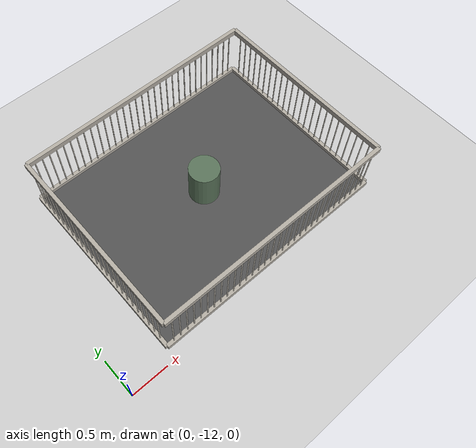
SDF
<sdf version="1.9">
 <world name="pig_pen_16units_world">
  <model name="ground_plane">
   <static>true</static>
   <link name="link">
    <collision name="collision">
     <geometry><plane><normal>0 0 1</normal><size>30 30</size></plane></geometry>
     <surface><friction><ode><mu>1.0</mu><mu2>1.0</mu2></ode></friction></surface>
    </collision>
    <visual name="visual">
     <geometry><plane><normal>0 0 1</normal><size>30 30</size></plane></geometry>
     <material>
      <ambient>0.8 0.8 0.8 1</ambient>
      <diffuse>0.8 0.8 0.8 1</diffuse>
      <specular>0.2 0.2 0.2 1</specular>
     </material>
    </visual>
   </link>
  </model>
  <model name="pen10">
   <pose>2.275 -10.565 0 0 0 0</pose>
   <static>true</static>
   <link name="floor">
    <pose>0 0 0.01 0 0 0</pose>
    <collision name="collision"><geometry><box><size>3.30 2.55 0.02</size></box></geometry></collision>
    <visual name="visual">
     <geometry><box><size>3.30 2.55 0.02</size></box></geometry>
     <material>
      <ambient>0.25 0.25 0.25 1</ambient>
      <diffuse>0.32 0.32 0.32 1</diffuse>
      <specular>0.05 0.05 0.05 1</specular>
     </material>
    </visual>
   </link>
   <link name="left_wall">
    <pose>0 1.275 0.415 0 0 0</pose>
    <collision name="top_rail_col">
     <pose>0 0 0.38 0 0 0</pose>
     <geometry><box><size>3.30 0.05 0.07</size></box></geometry>
    </collision>
    <visual name="top_rail_vis">
     <pose>0 0 0.38 0 0 0</pose>
     <geometry><box><size>3.30 0.05 0.07</size></box></geometry>
     <material><ambient>0.70 0.68 0.64 1</ambient><diffuse>0.70 0.68 0.64 1</diffuse></material>
    </visual>
    <collision name="bottom_rail_col">
     <pose>0 0 -0.38 0 0 0</pose>
     <geometry><box><size>3.30 0.05 0.07</size></box></geometry>
    </collision>
    <visual name="bottom_rail_vis">
     <pose>0 0 -0.38 0 0 0</pose>
     <geometry><box><size>3.30 0.05 0.07</size></box></geometry>
     <material><ambient>0.70 0.68 0.64 1</ambient><diffuse>0.70 0.68 0.64 1</diffuse></material>
    </visual>
    <collision name="bar_01_col">
     <pose>-1.55 0 0 0 0 0</pose>
     <geometry><cylinder><radius>0.0075</radius><length>0.69</length></cylinder></geometry>
    </collision>
    <visual name="bar_01_vis">
     <pose>-1.55 0 0 0 0 0</pose>
     <geometry><cylinder><radius>0.0075</radius><length>0.69</length></cylinder></geometry>
     <material><ambient>0.70 0.68 0.64 1</ambient><diffuse>0.70 0.68 0.64 1</diffuse></material>
    </visual>
    <collision name="bar_02_col">
     <pose>-1.45 0 0 0 0 0</pose>
     <geometry><cylinder><radius>0.0075</radius><length>0.69</length></cylinder></geometry>
    </collision>
    <visual name="bar_02_vis">
     <pose>-1.45 0 0 0 0 0</pose>
     <geometry><cylinder><radius>0.0075</radius><length>0.69</length></cylinder></geometry>
     <material><ambient>0.70 0.68 0.64 1</ambient><diffuse>0.70 0.68 0.64 1</diffuse></material>
    </visual>
    <collision name="bar_03_col">
     <pose>-1.35 0 0 0 0 0</pose>
     <geometry><cylinder><radius>0.0075</radius><length>0.69</length></cylinder></geometry>
    </collision>
    <visual name="bar_03_vis">
     <pose>-1.35 0 0 0 0 0</pose>
     <geometry><cylinder><radius>0.0075</radius><length>0.69</length></cylinder></geometry>
     <material><ambient>0.70 0.68 0.64 1</ambient><diffuse>0.70 0.68 0.64 1</diffuse></material>
    </visual>
    <collision name="bar_04_col">
     <pose>-1.25 0 0 0 0 0</pose>
     <geometry><cylinder><radius>0.0075</radius><length>0.69</length></cylinder></geometry>
    </collision>
    <visual name="bar_04_vis">
     <pose>-1.25 0 0 0 0 0</pose>
     <geometry><cylinder><radius>0.0075</radius><length>0.69</length></cylinder></geometry>
     <material><ambient>0.70 0.68 0.64 1</ambient><diffuse>0.70 0.68 0.64 1</diffuse></material>
    </visual>
    <collision name="bar_05_col">
     <pose>-1.15 0 0 0 0 0</pose>
     <geometry><cylinder><radius>0.0075</radius><length>0.69</length></cylinder></geometry>
    </collision>
    <visual name="bar_05_vis">
     <pose>-1.15 0 0 0 0 0</pose>
     <geometry><cylinder><radius>0.0075</radius><length>0.69</length></cylinder></geometry>
     <material><ambient>0.70 0.68 0.64 1</ambient><diffuse>0.70 0.68 0.64 1</diffuse></material>
    </visual>
    <collision name="bar_06_col">
     <pose>-1.05 0 0 0 0 0</pose>
     <geometry><cylinder><radius>0.0075</radius><length>0.69</length></cylinder></geometry>
    </collision>
    <visual name="bar_06_vis">
     <pose>-1.05 0 0 0 0 0</pose>
     <geometry><cylinder><radius>0.0075</radius><length>0.69</length></cylinder></geometry>
     <material><ambient>0.70 0.68 0.64 1</ambient><diffuse>0.70 0.68 0.64 1</diffuse></material>
    </visual>
    <collision name="bar_07_col">
     <pose>-0.95 0 0 0 0 0</pose>
     <geometry><cylinder><radius>0.0075</radius><length>0.69</length></cylinder></geometry>
    </collision>
    <visual name="bar_07_vis">
     <pose>-0.95 0 0 0 0 0</pose>
     <geometry><cylinder><radius>0.0075</radius><length>0.69</length></cylinder></geometry>
     <material><ambient>0.70 0.68 0.64 1</ambient><diffuse>0.70 0.68 0.64 1</diffuse></material>
    </visual>
    <collision name="bar_08_col">
     <pose>-0.85 0 0 0 0 0</pose>
     <geometry><cylinder><radius>0.0075</radius><length>0.69</length></cylinder></geometry>
    </collision>
    <visual name="bar_08_vis">
     <pose>-0.85 0 0 0 0 0</pose>
     <geometry><cylinder><radius>0.0075</radius><length>0.69</length></cylinder></geometry>
     <material><ambient>0.70 0.68 0.64 1</ambient><diffuse>0.70 0.68 0.64 1</diffuse></material>
    </visual>
    <collision name="bar_09_col">
     <pose>-0.75 0 0 0 0 0</pose>
     <geometry><cylinder><radius>0.0075</radius><length>0.69</length></cylinder></geometry>
    </collision>
    <visual name="bar_09_vis">
     <pose>-0.75 0 0 0 0 0</pose>
     <geometry><cylinder><radius>0.0075</radius><length>0.69</length></cylinder></geometry>
     <material><ambient>0.70 0.68 0.64 1</ambient><diffuse>0.70 0.68 0.64 1</diffuse></material>
    </visual>
    <collision name="bar_10_col">
     <pose>-0.65 0 0 0 0 0</pose>
     <geometry><cylinder><radius>0.0075</radius><length>0.69</length></cylinder></geometry>
    </collision>
    <visual name="bar_10_vis">
     <pose>-0.65 0 0 0 0 0</pose>
     <geometry><cylinder><radius>0.0075</radius><length>0.69</length></cylinder></geometry>
     <material><ambient>0.70 0.68 0.64 1</ambient><diffuse>0.70 0.68 0.64 1</diffuse></material>
    </visual>
    <collision name="bar_11_col">
     <pose>-0.55 0 0 0 0 0</pose>
     <geometry><cylinder><radius>0.0075</radius><length>0.69</length></cylinder></geometry>
    </collision>
    <visual name="bar_11_vis">
     <pose>-0.55 0 0 0 0 0</pose>
     <geometry><cylinder><radius>0.0075</radius><length>0.69</length></cylinder></geometry>
     <material><ambient>0.70 0.68 0.64 1</ambient><diffuse>0.70 0.68 0.64 1</diffuse></material>
    </visual>
    <collision name="bar_12_col">
     <pose>-0.45 0 0 0 0 0</pose>
     <geometry><cylinder><radius>0.0075</radius><length>0.69</length></cylinder></geometry>
    </collision>
    <visual name="bar_12_vis">
     <pose>-0.45 0 0 0 0 0</pose>
     <geometry><cylinder><radius>0.0075</radius><length>0.69</length></cylinder></geometry>
     <material><ambient>0.70 0.68 0.64 1</ambient><diffuse>0.70 0.68 0.64 1</diffuse></material>
    </visual>
    <collision name="bar_13_col">
     <pose>-0.35 0 0 0 0 0</pose>
     <geometry><cylinder><radius>0.0075</radius><length>0.69</length></cylinder></geometry>
    </collision>
    <visual name="bar_13_vis">
     <pose>-0.35 0 0 0 0 0</pose>
     <geometry><cylinder><radius>0.0075</radius><length>0.69</length></cylinder></geometry>
     <material><ambient>0.70 0.68 0.64 1</ambient><diffuse>0.70 0.68 0.64 1</diffuse></material>
    </visual>
    <collision name="bar_14_col">
     <pose>-0.25 0 0 0 0 0</pose>
     <geometry><cylinder><radius>0.0075</radius><length>0.69</length></cylinder></geometry>
    </collision>
    <visual name="bar_14_vis">
     <pose>-0.25 0 0 0 0 0</pose>
     <geometry><cylinder><radius>0.0075</radius><length>0.69</length></cylinder></geometry>
     <material><ambient>0.70 0.68 0.64 1</ambient><diffuse>0.70 0.68 0.64 1</diffuse></material>
    </visual>
    <collision name="bar_15_col">
     <pose>-0.15 0 0 0 0 0</pose>
     <geometry><cylinder><radius>0.0075</radius><length>0.69</length></cylinder></geometry>
    </collision>
    <visual name="bar_15_vis">
     <pose>-0.15 0 0 0 0 0</pose>
     <geometry><cylinder><radius>0.0075</radius><length>0.69</length></cylinder></geometry>
     <material><ambient>0.70 0.68 0.64 1</ambient><diffuse>0.70 0.68 0.64 1</diffuse></material>
    </visual>
    <collision name="bar_16_col">
     <pose>-0.05 0 0 0 0 0</pose>
     <geometry><cylinder><radius>0.0075</radius><length>0.69</length></cylinder></geometry>
    </collision>
    <visual name="bar_16_vis">
     <pose>-0.05 0 0 0 0 0</pose>
     <geometry><cylinder><radius>0.0075</radius><length>0.69</length></cylinder></geometry>
     <material><ambient>0.70 0.68 0.64 1</ambient><diffuse>0.70 0.68 0.64 1</diffuse></material>
    </visual>
    <collision name="bar_17_col">
     <pose>0.05 0 0 0 0 0</pose>
     <geometry><cylinder><radius>0.0075</radius><length>0.69</length></cylinder></geometry>
    </collision>
    <visual name="bar_17_vis">
     <pose>0.05 0 0 0 0 0</pose>
     <geometry><cylinder><radius>0.0075</radius><length>0.69</length></cylinder></geometry>
     <material><ambient>0.70 0.68 0.64 1</ambient><diffuse>0.70 0.68 0.64 1</diffuse></material>
    </visual>
    <collision name="bar_18_col">
     <pose>0.15 0 0 0 0 0</pose>
     <geometry><cylinder><radius>0.0075</radius><length>0.69</length></cylinder></geometry>
    </collision>
    <visual name="bar_18_vis">
     <pose>0.15 0 0 0 0 0</pose>
     <geometry><cylinder><radius>0.0075</radius><length>0.69</length></cylinder></geometry>
     <material><ambient>0.70 0.68 0.64 1</ambient><diffuse>0.70 0.68 0.64 1</diffuse></material>
    </visual>
    <collision name="bar_19_col">
     <pose>0.25 0 0 0 0 0</pose>
     <geometry><cylinder><radius>0.0075</radius><length>0.69</length></cylinder></geometry>
    </collision>
    <visual name="bar_19_vis">
     <pose>0.25 0 0 0 0 0</pose>
     <geometry><cylinder><radius>0.0075</radius><length>0.69</length></cylinder></geometry>
     <material><ambient>0.70 0.68 0.64 1</ambient><diffuse>0.70 0.68 0.64 1</diffuse></material>
    </visual>
    <collision name="bar_20_col">
     <pose>0.35 0 0 0 0 0</pose>
     <geometry><cylinder><radius>0.0075</radius><length>0.69</length></cylinder></geometry>
    </collision>
    <visual name="bar_20_vis">
     <pose>0.35 0 0 0 0 0</pose>
     <geometry><cylinder><radius>0.0075</radius><length>0.69</length></cylinder></geometry>
     <material><ambient>0.70 0.68 0.64 1</ambient><diffuse>0.70 0.68 0.64 1</diffuse></material>
    </visual>
    <collision name="bar_21_col">
     <pose>0.45 0 0 0 0 0</pose>
     <geometry><cylinder><radius>0.0075</radius><length>0.69</length></cylinder></geometry>
    </collision>
    <visual name="bar_21_vis">
     <pose>0.45 0 0 0 0 0</pose>
     <geometry><cylinder><radius>0.0075</radius><length>0.69</length></cylinder></geometry>
     <material><ambient>0.70 0.68 0.64 1</ambient><diffuse>0.70 0.68 0.64 1</diffuse></material>
    </visual>
    <collision name="bar_22_col">
     <pose>0.55 0 0 0 0 0</pose>
     <geometry><cylinder><radius>0.0075</radius><length>0.69</length></cylinder></geometry>
    </collision>
    <visual name="bar_22_vis">
     <pose>0.55 0 0 0 0 0</pose>
     <geometry><cylinder><radius>0.0075</radius><length>0.69</length></cylinder></geometry>
     <material><ambient>0.70 0.68 0.64 1</ambient><diffuse>0.70 0.68 0.64 1</diffuse></material>
    </visual>
    <collision name="bar_23_col">
     <pose>0.65 0 0 0 0 0</pose>
     <geometry><cylinder><radius>0.0075</radius><length>0.69</length></cylinder></geometry>
    </collision>
    <visual name="bar_23_vis">
     <pose>0.65 0 0 0 0 0</pose>
     <geometry><cylinder><radius>0.0075</radius><length>0.69</length></cylinder></geometry>
     <material><ambient>0.70 0.68 0.64 1</ambient><diffuse>0.70 0.68 0.64 1</diffuse></material>
    </visual>
    <collision name="bar_24_col">
     <pose>0.75 0 0 0 0 0</pose>
     <geometry><cylinder><radius>0.0075</radius><length>0.69</length></cylinder></geometry>
    </collision>
    <visual name="bar_24_vis">
     <pose>0.75 0 0 0 0 0</pose>
     <geometry><cylinder><radius>0.0075</radius><length>0.69</length></cylinder></geometry>
     <material><ambient>0.70 0.68 0.64 1</ambient><diffuse>0.70 0.68 0.64 1</diffuse></material>
    </visual>
    <collision name="bar_25_col">
     <pose>0.85 0 0 0 0 0</pose>
     <geometry><cylinder><radius>0.0075</radius><length>0.69</length></cylinder></geometry>
    </collision>
    <visual name="bar_25_vis">
     <pose>0.85 0 0 0 0 0</pose>
     <geometry><cylinder><radius>0.0075</radius><length>0.69</length></cylinder></geometry>
     <material><ambient>0.70 0.68 0.64 1</ambient><diffuse>0.70 0.68 0.64 1</diffuse></material>
    </visual>
    <collision name="bar_26_col">
     <pose>0.95 0 0 0 0 0</pose>
     <geometry><cylinder><radius>0.0075</radius><length>0.69</length></cylinder></geometry>
    </collision>
    <visual name="bar_26_vis">
     <pose>0.95 0 0 0 0 0</pose>
     <geometry><cylinder><radius>0.0075</radius><length>0.69</length></cylinder></geometry>
     <material><ambient>0.70 0.68 0.64 1</ambient><diffuse>0.70 0.68 0.64 1</diffuse></material>
    </visual>
    <collision name="bar_27_col">
     <pose>1.05 0 0 0 0 0</pose>
     <geometry><cylinder><radius>0.0075</radius><length>0.69</length></cylinder></geometry>
    </collision>
    <visual name="bar_27_vis">
     <pose>1.05 0 0 0 0 0</pose>
     <geometry><cylinder><radius>0.0075</radius><length>0.69</length></cylinder></geometry>
     <material><ambient>0.70 0.68 0.64 1</ambient><diffuse>0.70 0.68 0.64 1</diffuse></material>
    </visual>
    <collision name="bar_28_col">
     <pose>1.15 0 0 0 0 0</pose>
     <geometry><cylinder><radius>0.0075</radius><length>0.69</length></cylinder></geometry>
    </collision>
    <visual name="bar_28_vis">
     <pose>1.15 0 0 0 0 0</pose>
     <geometry><cylinder><radius>0.0075</radius><length>0.69</length></cylinder></geometry>
     <material><ambient>0.70 0.68 0.64 1</ambient><diffuse>0.70 0.68 0.64 1</diffuse></material>
    </visual>
    <collision name="bar_29_col">
     <pose>1.25 0 0 0 0 0</pose>
     <geometry><cylinder><radius>0.0075</radius><length>0.69</length></cylinder></geometry>
    </collision>
    <visual name="bar_29_vis">
     <pose>1.25 0 0 0 0 0</pose>
     <geometry><cylinder><radius>0.0075</radius><length>0.69</length></cylinder></geometry>
     <material><ambient>0.70 0.68 0.64 1</ambient><diffuse>0.70 0.68 0.64 1</diffuse></material>
    </visual>
    <collision name="bar_30_col">
     <pose>1.35 0 0 0 0 0</pose>
     <geometry><cylinder><radius>0.0075</radius><length>0.69</length></cylinder></geometry>
    </collision>
    <visual name="bar_30_vis">
     <pose>1.35 0 0 0 0 0</pose>
     <geometry><cylinder><radius>0.0075</radius><length>0.69</length></cylinder></geometry>
     <material><ambient>0.70 0.68 0.64 1</ambient><diffuse>0.70 0.68 0.64 1</diffuse></material>
    </visual>
    <collision name="bar_31_col">
     <pose>1.45 0 0 0 0 0</pose>
     <geometry><cylinder><radius>0.0075</radius><length>0.69</length></cylinder></geometry>
    </collision>
    <visual name="bar_31_vis">
     <pose>1.45 0 0 0 0 0</pose>
     <geometry><cylinder><radius>0.0075</radius><length>0.69</length></cylinder></geometry>
     <material><ambient>0.70 0.68 0.64 1</ambient><diffuse>0.70 0.68 0.64 1</diffuse></material>
    </visual>
    <collision name="bar_32_col">
     <pose>1.55 0 0 0 0 0</pose>
     <geometry><cylinder><radius>0.0075</radius><length>0.69</length></cylinder></geometry>
    </collision>
    <visual name="bar_32_vis">
     <pose>1.55 0 0 0 0 0</pose>
     <geometry><cylinder><radius>0.0075</radius><length>0.69</length></cylinder></geometry>
     <material><ambient>0.70 0.68 0.64 1</ambient><diffuse>0.70 0.68 0.64 1</diffuse></material>
    </visual>
   </link>
   <link name="right_wall">
    <pose>0 -1.275 0.415 0 0 0</pose>
    <collision name="top_rail_col">
     <pose>0 0 0.38 0 0 0</pose>
     <geometry><box><size>3.30 0.05 0.07</size></box></geometry>
    </collision>
    <visual name="top_rail_vis">
     <pose>0 0 0.38 0 0 0</pose>
     <geometry><box><size>3.30 0.05 0.07</size></box></geometry>
     <material><ambient>0.70 0.68 0.64 1</ambient><diffuse>0.70 0.68 0.64 1</diffuse></material>
    </visual>
    <collision name="bottom_rail_col">
     <pose>0 0 -0.38 0 0 0</pose>
     <geometry><box><size>3.30 0.05 0.07</size></box></geometry>
    </collision>
    <visual name="bottom_rail_vis">
     <pose>0 0 -0.38 0 0 0</pose>
     <geometry><box><size>3.30 0.05 0.07</size></box></geometry>
     <material><ambient>0.70 0.68 0.64 1</ambient><diffuse>0.70 0.68 0.64 1</diffuse></material>
    </visual>
    <collision name="bar_01_col">
     <pose>-1.55 0 0 0 0 0</pose>
     <geometry><cylinder><radius>0.0075</radius><length>0.69</length></cylinder></geometry>
    </collision>
    <visual name="bar_01_vis">
     <pose>-1.55 0 0 0 0 0</pose>
     <geometry><cylinder><radius>0.0075</radius><length>0.69</length></cylinder></geometry>
     <material><ambient>0.70 0.68 0.64 1</ambient><diffuse>0.70 0.68 0.64 1</diffuse></material>
    </visual>
    <collision name="bar_02_col">
     <pose>-1.45 0 0 0 0 0</pose>
     <geometry><cylinder><radius>0.0075</radius><length>0.69</length></cylinder></geometry>
    </collision>
    <visual name="bar_02_vis">
     <pose>-1.45 0 0 0 0 0</pose>
     <geometry><cylinder><radius>0.0075</radius><length>0.69</length></cylinder></geometry>
     <material><ambient>0.70 0.68 0.64 1</ambient><diffuse>0.70 0.68 0.64 1</diffuse></material>
    </visual>
    <collision name="bar_03_col">
     <pose>-1.35 0 0 0 0 0</pose>
     <geometry><cylinder><radius>0.0075</radius><length>0.69</length></cylinder></geometry>
    </collision>
    <visual name="bar_03_vis">
     <pose>-1.35 0 0 0 0 0</pose>
     <geometry><cylinder><radius>0.0075</radius><length>0.69</length></cylinder></geometry>
     <material><ambient>0.70 0.68 0.64 1</ambient><diffuse>0.70 0.68 0.64 1</diffuse></material>
    </visual>
    <collision name="bar_04_col">
     <pose>-1.25 0 0 0 0 0</pose>
     <geometry><cylinder><radius>0.0075</radius><length>0.69</length></cylinder></geometry>
    </collision>
    <visual name="bar_04_vis">
     <pose>-1.25 0 0 0 0 0</pose>
     <geometry><cylinder><radius>0.0075</radius><length>0.69</length></cylinder></geometry>
     <material><ambient>0.70 0.68 0.64 1</ambient><diffuse>0.70 0.68 0.64 1</diffuse></material>
    </visual>
    <collision name="bar_05_col">
     <pose>-1.15 0 0 0 0 0</pose>
     <geometry><cylinder><radius>0.0075</radius><length>0.69</length></cylinder></geometry>
    </collision>
    <visual name="bar_05_vis">
     <pose>-1.15 0 0 0 0 0</pose>
     <geometry><cylinder><radius>0.0075</radius><length>0.69</length></cylinder></geometry>
     <material><ambient>0.70 0.68 0.64 1</ambient><diffuse>0.70 0.68 0.64 1</diffuse></material>
    </visual>
    <collision name="bar_06_col">
     <pose>-1.05 0 0 0 0 0</pose>
     <geometry><cylinder><radius>0.0075</radius><length>0.69</length></cylinder></geometry>
    </collision>
    <visual name="bar_06_vis">
     <pose>-1.05 0 0 0 0 0</pose>
     <geometry><cylinder><radius>0.0075</radius><length>0.69</length></cylinder></geometry>
     <material><ambient>0.70 0.68 0.64 1</ambient><diffuse>0.70 0.68 0.64 1</diffuse></material>
    </visual>
    <collision name="bar_07_col">
     <pose>-0.95 0 0 0 0 0</pose>
     <geometry><cylinder><radius>0.0075</radius><length>0.69</length></cylinder></geometry>
    </collision>
    <visual name="bar_07_vis">
     <pose>-0.95 0 0 0 0 0</pose>
     <geometry><cylinder><radius>0.0075</radius><length>0.69</length></cylinder></geometry>
     <material><ambient>0.70 0.68 0.64 1</ambient><diffuse>0.70 0.68 0.64 1</diffuse></material>
    </visual>
    <collision name="bar_08_col">
     <pose>-0.85 0 0 0 0 0</pose>
     <geometry><cylinder><radius>0.0075</radius><length>0.69</length></cylinder></geometry>
    </collision>
    <visual name="bar_08_vis">
     <pose>-0.85 0 0 0 0 0</pose>
     <geometry><cylinder><radius>0.0075</radius><length>0.69</length></cylinder></geometry>
     <material><ambient>0.70 0.68 0.64 1</ambient><diffuse>0.70 0.68 0.64 1</diffuse></material>
    </visual>
    <collision name="bar_09_col">
     <pose>-0.75 0 0 0 0 0</pose>
     <geometry><cylinder><radius>0.0075</radius><length>0.69</length></cylinder></geometry>
    </collision>
    <visual name="bar_09_vis">
     <pose>-0.75 0 0 0 0 0</pose>
     <geometry><cylinder><radius>0.0075</radius><length>0.69</length></cylinder></geometry>
     <material><ambient>0.70 0.68 0.64 1</ambient><diffuse>0.70 0.68 0.64 1</diffuse></material>
    </visual>
    <collision name="bar_10_col">
     <pose>-0.65 0 0 0 0 0</pose>
     <geometry><cylinder><radius>0.0075</radius><length>0.69</length></cylinder></geometry>
    </collision>
    <visual name="bar_10_vis">
     <pose>-0.65 0 0 0 0 0</pose>
     <geometry><cylinder><radius>0.0075</radius><length>0.69</length></cylinder></geometry>
     <material><ambient>0.70 0.68 0.64 1</ambient><diffuse>0.70 0.68 0.64 1</diffuse></material>
    </visual>
    <collision name="bar_11_col">
     <pose>-0.55 0 0 0 0 0</pose>
     <geometry><cylinder><radius>0.0075</radius><length>0.69</length></cylinder></geometry>
    </collision>
    <visual name="bar_11_vis">
     <pose>-0.55 0 0 0 0 0</pose>
     <geometry><cylinder><radius>0.0075</radius><length>0.69</length></cylinder></geometry>
     <material><ambient>0.70 0.68 0.64 1</ambient><diffuse>0.70 0.68 0.64 1</diffuse></material>
    </visual>
    <collision name="bar_12_col">
     <pose>-0.45 0 0 0 0 0</pose>
     <geometry><cylinder><radius>0.0075</radius><length>0.69</length></cylinder></geometry>
    </collision>
    <visual name="bar_12_vis">
     <pose>-0.45 0 0 0 0 0</pose>
     <geometry><cylinder><radius>0.0075</radius><length>0.69</length></cylinder></geometry>
     <material><ambient>0.70 0.68 0.64 1</ambient><diffuse>0.70 0.68 0.64 1</diffuse></material>
    </visual>
    <collision name="bar_13_col">
     <pose>-0.35 0 0 0 0 0</pose>
     <geometry><cylinder><radius>0.0075</radius><length>0.69</length></cylinder></geometry>
    </collision>
    <visual name="bar_13_vis">
     <pose>-0.35 0 0 0 0 0</pose>
     <geometry><cylinder><radius>0.0075</radius><length>0.69</length></cylinder></geometry>
     <material><ambient>0.70 0.68 0.64 1</ambient><diffuse>0.70 0.68 0.64 1</diffuse></material>
    </visual>
    <collision name="bar_14_col">
     <pose>-0.25 0 0 0 0 0</pose>
     <geometry><cylinder><radius>0.0075</radius><length>0.69</length></cylinder></geometry>
    </collision>
    <visual name="bar_14_vis">
     <pose>-0.25 0 0 0 0 0</pose>
     <geometry><cylinder><radius>0.0075</radius><length>0.69</length></cylinder></geometry>
     <material><ambient>0.70 0.68 0.64 1</ambient><diffuse>0.70 0.68 0.64 1</diffuse></material>
    </visual>
    <collision name="bar_15_col">
     <pose>-0.15 0 0 0 0 0</pose>
     <geometry><cylinder><radius>0.0075</radius><length>0.69</length></cylinder></geometry>
    </collision>
    <visual name="bar_15_vis">
     <pose>-0.15 0 0 0 0 0</pose>
     <geometry><cylinder><radius>0.0075</radius><length>0.69</length></cylinder></geometry>
     <material><ambient>0.70 0.68 0.64 1</ambient><diffuse>0.70 0.68 0.64 1</diffuse></material>
    </visual>
    <collision name="bar_16_col">
     <pose>-0.05 0 0 0 0 0</pose>
     <geometry><cylinder><radius>0.0075</radius><length>0.69</length></cylinder></geometry>
    </collision>
    <visual name="bar_16_vis">
     <pose>-0.05 0 0 0 0 0</pose>
     <geometry><cylinder><radius>0.0075</radius><length>0.69</length></cylinder></geometry>
     <material><ambient>0.70 0.68 0.64 1</ambient><diffuse>0.70 0.68 0.64 1</diffuse></material>
    </visual>
    <collision name="bar_17_col">
     <pose>0.05 0 0 0 0 0</pose>
     <geometry><cylinder><radius>0.0075</radius><length>0.69</length></cylinder></geometry>
    </collision>
    <visual name="bar_17_vis">
     <pose>0.05 0 0 0 0 0</pose>
     <geometry><cylinder><radius>0.0075</radius><length>0.69</length></cylinder></geometry>
     <material><ambient>0.70 0.68 0.64 1</ambient><diffuse>0.70 0.68 0.64 1</diffuse></material>
    </visual>
    <collision name="bar_18_col">
     <pose>0.15 0 0 0 0 0</pose>
     <geometry><cylinder><radius>0.0075</radius><length>0.69</length></cylinder></geometry>
    </collision>
    <visual name="bar_18_vis">
     <pose>0.15 0 0 0 0 0</pose>
     <geometry><cylinder><radius>0.0075</radius><length>0.69</length></cylinder></geometry>
     <material><ambient>0.70 0.68 0.64 1</ambient><diffuse>0.70 0.68 0.64 1</diffuse></material>
    </visual>
    <collision name="bar_19_col">
     <pose>0.25 0 0 0 0 0</pose>
     <geometry><cylinder><radius>0.0075</radius><length>0.69</length></cylinder></geometry>
    </collision>
    <visual name="bar_19_vis">
     <pose>0.25 0 0 0 0 0</pose>
     <geometry><cylinder><radius>0.0075</radius><length>0.69</length></cylinder></geometry>
     <material><ambient>0.70 0.68 0.64 1</ambient><diffuse>0.70 0.68 0.64 1</diffuse></material>
    </visual>
    <collision name="bar_20_col">
     <pose>0.35 0 0 0 0 0</pose>
     <geometry><cylinder><radius>0.0075</radius><length>0.69</length></cylinder></geometry>
    </collision>
    <visual name="bar_20_vis">
     <pose>0.35 0 0 0 0 0</pose>
     <geometry><cylinder><radius>0.0075</radius><length>0.69</length></cylinder></geometry>
     <material><ambient>0.70 0.68 0.64 1</ambient><diffuse>0.70 0.68 0.64 1</diffuse></material>
    </visual>
    <collision name="bar_21_col">
     <pose>0.45 0 0 0 0 0</pose>
     <geometry><cylinder><radius>0.0075</radius><length>0.69</length></cylinder></geometry>
    </collision>
    <visual name="bar_21_vis">
     <pose>0.45 0 0 0 0 0</pose>
     <geometry><cylinder><radius>0.0075</radius><length>0.69</length></cylinder></geometry>
     <material><ambient>0.70 0.68 0.64 1</ambient><diffuse>0.70 0.68 0.64 1</diffuse></material>
    </visual>
    <collision name="bar_22_col">
     <pose>0.55 0 0 0 0 0</pose>
     <geometry><cylinder><radius>0.0075</radius><length>0.69</length></cylinder></geometry>
    </collision>
    <visual name="bar_22_vis">
     <pose>0.55 0 0 0 0 0</pose>
     <geometry><cylinder><radius>0.0075</radius><length>0.69</length></cylinder></geometry>
     <material><ambient>0.70 0.68 0.64 1</ambient><diffuse>0.70 0.68 0.64 1</diffuse></material>
    </visual>
    <collision name="bar_23_col">
     <pose>0.65 0 0 0 0 0</pose>
     <geometry><cylinder><radius>0.0075</radius><length>0.69</length></cylinder></geometry>
    </collision>
    <visual name="bar_23_vis">
     <pose>0.65 0 0 0 0 0</pose>
     <geometry><cylinder><radius>0.0075</radius><length>0.69</length></cylinder></geometry>
     <material><ambient>0.70 0.68 0.64 1</ambient><diffuse>0.70 0.68 0.64 1</diffuse></material>
    </visual>
    <collision name="bar_24_col">
     <pose>0.75 0 0 0 0 0</pose>
     <geometry><cylinder><radius>0.0075</radius><length>0.69</length></cylinder></geometry>
    </collision>
    <visual name="bar_24_vis">
     <pose>0.75 0 0 0 0 0</pose>
     <geometry><cylinder><radius>0.0075</radius><length>0.69</length></cylinder></geometry>
     <material><ambient>0.70 0.68 0.64 1</ambient><diffuse>0.70 0.68 0.64 1</diffuse></material>
    </visual>
    <collision name="bar_25_col">
     <pose>0.85 0 0 0 0 0</pose>
     <geometry><cylinder><radius>0.0075</radius><length>0.69</length></cylinder></geometry>
    </collision>
    <visual name="bar_25_vis">
     <pose>0.85 0 0 0 0 0</pose>
     <geometry><cylinder><radius>0.0075</radius><length>0.69</length></cylinder></geometry>
     <material><ambient>0.70 0.68 0.64 1</ambient><diffuse>0.70 0.68 0.64 1</diffuse></material>
    </visual>
    <collision name="bar_26_col">
     <pose>0.95 0 0 0 0 0</pose>
     <geometry><cylinder><radius>0.0075</radius><length>0.69</length></cylinder></geometry>
    </collision>
    <visual name="bar_26_vis">
     <pose>0.95 0 0 0 0 0</pose>
     <geometry><cylinder><radius>0.0075</radius><length>0.69</length></cylinder></geometry>
     <material><ambient>0.70 0.68 0.64 1</ambient><diffuse>0.70 0.68 0.64 1</diffuse></material>
    </visual>
    <collision name="bar_27_col">
     <pose>1.05 0 0 0 0 0</pose>
     <geometry><cylinder><radius>0.0075</radius><length>0.69</length></cylinder></geometry>
    </collision>
    <visual name="bar_27_vis">
     <pose>1.05 0 0 0 0 0</pose>
     <geometry><cylinder><radius>0.0075</radius><length>0.69</length></cylinder></geometry>
     <material><ambient>0.70 0.68 0.64 1</ambient><diffuse>0.70 0.68 0.64 1</diffuse></material>
    </visual>
    <collision name="bar_28_col">
     <pose>1.15 0 0 0 0 0</pose>
     <geometry><cylinder><radius>0.0075</radius><length>0.69</length></cylinder></geometry>
    </collision>
    <visual name="bar_28_vis">
     <pose>1.15 0 0 0 0 0</pose>
     <geometry><cylinder><radius>0.0075</radius><length>0.69</length></cylinder></geometry>
     <material><ambient>0.70 0.68 0.64 1</ambient><diffuse>0.70 0.68 0.64 1</diffuse></material>
    </visual>
    <collision name="bar_29_col">
     <pose>1.25 0 0 0 0 0</pose>
     <geometry><cylinder><radius>0.0075</radius><length>0.69</length></cylinder></geometry>
    </collision>
    <visual name="bar_29_vis">
     <pose>1.25 0 0 0 0 0</pose>
     <geometry><cylinder><radius>0.0075</radius><length>0.69</length></cylinder></geometry>
     <material><ambient>0.70 0.68 0.64 1</ambient><diffuse>0.70 0.68 0.64 1</diffuse></material>
    </visual>
    <collision name="bar_30_col">
     <pose>1.35 0 0 0 0 0</pose>
     <geometry><cylinder><radius>0.0075</radius><length>0.69</length></cylinder></geometry>
    </collision>
    <visual name="bar_30_vis">
     <pose>1.35 0 0 0 0 0</pose>
     <geometry><cylinder><radius>0.0075</radius><length>0.69</length></cylinder></geometry>
     <material><ambient>0.70 0.68 0.64 1</ambient><diffuse>0.70 0.68 0.64 1</diffuse></material>
    </visual>
    <collision name="bar_31_col">
     <pose>1.45 0 0 0 0 0</pose>
     <geometry><cylinder><radius>0.0075</radius><length>0.69</length></cylinder></geometry>
    </collision>
    <visual name="bar_31_vis">
     <pose>1.45 0 0 0 0 0</pose>
     <geometry><cylinder><radius>0.0075</radius><length>0.69</length></cylinder></geometry>
     <material><ambient>0.70 0.68 0.64 1</ambient><diffuse>0.70 0.68 0.64 1</diffuse></material>
    </visual>
    <collision name="bar_32_col">
     <pose>1.55 0 0 0 0 0</pose>
     <geometry><cylinder><radius>0.0075</radius><length>0.69</length></cylinder></geometry>
    </collision>
    <visual name="bar_32_vis">
     <pose>1.55 0 0 0 0 0</pose>
     <geometry><cylinder><radius>0.0075</radius><length>0.69</length></cylinder></geometry>
     <material><ambient>0.70 0.68 0.64 1</ambient><diffuse>0.70 0.68 0.64 1</diffuse></material>
    </visual>
   </link>
   <link name="back_wall">
    <pose>1.65 0 0.415 0 0 0</pose>
    <collision name="top_rail_col">
     <pose>0 0 0.38 0 0 0</pose>
     <geometry><box><size>0.05 2.55 0.07</size></box></geometry>
    </collision>
    <visual name="top_rail_vis">
     <pose>0 0 0.38 0 0 0</pose>
     <geometry><box><size>0.05 2.55 0.07</size></box></geometry>
     <material><ambient>0.70 0.68 0.64 1</ambient><diffuse>0.70 0.68 0.64 1</diffuse></material>
    </visual>
    <collision name="bottom_rail_col">
     <pose>0 0 -0.38 0 0 0</pose>
     <geometry><box><size>0.05 2.55 0.07</size></box></geometry>
    </collision>
    <visual name="bottom_rail_vis">
     <pose>0 0 -0.38 0 0 0</pose>
     <geometry><box><size>0.05 2.55 0.07</size></box></geometry>
     <material><ambient>0.70 0.68 0.64 1</ambient><diffuse>0.70 0.68 0.64 1</diffuse></material>
    </visual>
    <collision name="bar_01_col">
     <pose>0 -1.15 0 0 0 0</pose>
     <geometry><cylinder><radius>0.0075</radius><length>0.69</length></cylinder></geometry>
    </collision>
    <visual name="bar_01_vis">
     <pose>0 -1.15 0 0 0 0</pose>
     <geometry><cylinder><radius>0.0075</radius><length>0.69</length></cylinder></geometry>
     <material><ambient>0.70 0.68 0.64 1</ambient><diffuse>0.70 0.68 0.64 1</diffuse></material>
    </visual>
    <collision name="bar_02_col">
     <pose>0 -1.05 0 0 0 0</pose>
     <geometry><cylinder><radius>0.0075</radius><length>0.69</length></cylinder></geometry>
    </collision>
    <visual name="bar_02_vis">
     <pose>0 -1.05 0 0 0 0</pose>
     <geometry><cylinder><radius>0.0075</radius><length>0.69</length></cylinder></geometry>
     <material><ambient>0.70 0.68 0.64 1</ambient><diffuse>0.70 0.68 0.64 1</diffuse></material>
    </visual>
    <collision name="bar_03_col">
     <pose>0 -0.95 0 0 0 0</pose>
     <geometry><cylinder><radius>0.0075</radius><length>0.69</length></cylinder></geometry>
    </collision>
    <visual name="bar_03_vis">
     <pose>0 -0.95 0 0 0 0</pose>
     <geometry><cylinder><radius>0.0075</radius><length>0.69</length></cylinder></geometry>
     <material><ambient>0.70 0.68 0.64 1</ambient><diffuse>0.70 0.68 0.64 1</diffuse></material>
    </visual>
    <collision name="bar_04_col">
     <pose>0 -0.85 0 0 0 0</pose>
     <geometry><cylinder><radius>0.0075</radius><length>0.69</length></cylinder></geometry>
    </collision>
    <visual name="bar_04_vis">
     <pose>0 -0.85 0 0 0 0</pose>
     <geometry><cylinder><radius>0.0075</radius><length>0.69</length></cylinder></geometry>
     <material><ambient>0.70 0.68 0.64 1</ambient><diffuse>0.70 0.68 0.64 1</diffuse></material>
    </visual>
    <collision name="bar_05_col">
     <pose>0 -0.75 0 0 0 0</pose>
     <geometry><cylinder><radius>0.0075</radius><length>0.69</length></cylinder></geometry>
    </collision>
    <visual name="bar_05_vis">
     <pose>0 -0.75 0 0 0 0</pose>
     <geometry><cylinder><radius>0.0075</radius><length>0.69</length></cylinder></geometry>
     <material><ambient>0.70 0.68 0.64 1</ambient><diffuse>0.70 0.68 0.64 1</diffuse></material>
    </visual>
    <collision name="bar_06_col">
     <pose>0 -0.65 0 0 0 0</pose>
     <geometry><cylinder><radius>0.0075</radius><length>0.69</length></cylinder></geometry>
    </collision>
    <visual name="bar_06_vis">
     <pose>0 -0.65 0 0 0 0</pose>
     <geometry><cylinder><radius>0.0075</radius><length>0.69</length></cylinder></geometry>
     <material><ambient>0.70 0.68 0.64 1</ambient><diffuse>0.70 0.68 0.64 1</diffuse></material>
    </visual>
    <collision name="bar_07_col">
     <pose>0 -0.55 0 0 0 0</pose>
     <geometry><cylinder><radius>0.0075</radius><length>0.69</length></cylinder></geometry>
    </collision>
    <visual name="bar_07_vis">
     <pose>0 -0.55 0 0 0 0</pose>
     <geometry><cylinder><radius>0.0075</radius><length>0.69</length></cylinder></geometry>
     <material><ambient>0.70 0.68 0.64 1</ambient><diffuse>0.70 0.68 0.64 1</diffuse></material>
    </visual>
    <collision name="bar_08_col">
     <pose>0 -0.45 0 0 0 0</pose>
     <geometry><cylinder><radius>0.0075</radius><length>0.69</length></cylinder></geometry>
    </collision>
    <visual name="bar_08_vis">
     <pose>0 -0.45 0 0 0 0</pose>
     <geometry><cylinder><radius>0.0075</radius><length>0.69</length></cylinder></geometry>
     <material><ambient>0.70 0.68 0.64 1</ambient><diffuse>0.70 0.68 0.64 1</diffuse></material>
    </visual>
    <collision name="bar_09_col">
     <pose>0 -0.35 0 0 0 0</pose>
     <geometry><cylinder><radius>0.0075</radius><length>0.69</length></cylinder></geometry>
    </collision>
    <visual name="bar_09_vis">
     <pose>0 -0.35 0 0 0 0</pose>
     <geometry><cylinder><radius>0.0075</radius><length>0.69</length></cylinder></geometry>
     <material><ambient>0.70 0.68 0.64 1</ambient><diffuse>0.70 0.68 0.64 1</diffuse></material>
    </visual>
    <collision name="bar_10_col">
     <pose>0 -0.25 0 0 0 0</pose>
     <geometry><cylinder><radius>0.0075</radius><length>0.69</length></cylinder></geometry>
    </collision>
    <visual name="bar_10_vis">
     <pose>0 -0.25 0 0 0 0</pose>
     <geometry><cylinder><radius>0.0075</radius><length>0.69</length></cylinder></geometry>
     <material><ambient>0.70 0.68 0.64 1</ambient><diffuse>0.70 0.68 0.64 1</diffuse></material>
    </visual>
    <collision name="bar_11_col">
     <pose>0 -0.15 0 0 0 0</pose>
     <geometry><cylinder><radius>0.0075</radius><length>0.69</length></cylinder></geometry>
    </collision>
    <visual name="bar_11_vis">
     <pose>0 -0.15 0 0 0 0</pose>
     <geometry><cylinder><radius>0.0075</radius><length>0.69</length></cylinder></geometry>
     <material><ambient>0.70 0.68 0.64 1</ambient><diffuse>0.70 0.68 0.64 1</diffuse></material>
    </visual>
    <collision name="bar_12_col">
     <pose>0 -0.05 0 0 0 0</pose>
     <geometry><cylinder><radius>0.0075</radius><length>0.69</length></cylinder></geometry>
    </collision>
    <visual name="bar_12_vis">
     <pose>0 -0.05 0 0 0 0</pose>
     <geometry><cylinder><radius>0.0075</radius><length>0.69</length></cylinder></geometry>
     <material><ambient>0.70 0.68 0.64 1</ambient><diffuse>0.70 0.68 0.64 1</diffuse></material>
    </visual>
    <collision name="bar_13_col">
     <pose>0 0.05 0 0 0 0</pose>
     <geometry><cylinder><radius>0.0075</radius><length>0.69</length></cylinder></geometry>
    </collision>
    <visual name="bar_13_vis">
     <pose>0 0.05 0 0 0 0</pose>
     <geometry><cylinder><radius>0.0075</radius><length>0.69</length></cylinder></geometry>
     <material><ambient>0.70 0.68 0.64 1</ambient><diffuse>0.70 0.68 0.64 1</diffuse></material>
    </visual>
    <collision name="bar_14_col">
     <pose>0 0.15 0 0 0 0</pose>
     <geometry><cylinder><radius>0.0075</radius><length>0.69</length></cylinder></geometry>
    </collision>
    <visual name="bar_14_vis">
     <pose>0 0.15 0 0 0 0</pose>
     <geometry><cylinder><radius>0.0075</radius><length>0.69</length></cylinder></geometry>
     <material><ambient>0.70 0.68 0.64 1</ambient><diffuse>0.70 0.68 0.64 1</diffuse></material>
    </visual>
    <collision name="bar_15_col">
     <pose>0 0.25 0 0 0 0</pose>
     <geometry><cylinder><radius>0.0075</radius><length>0.69</length></cylinder></geometry>
    </collision>
    <visual name="bar_15_vis">
     <pose>0 0.25 0 0 0 0</pose>
     <geometry><cylinder><radius>0.0075</radius><length>0.69</length></cylinder></geometry>
     <material><ambient>0.70 0.68 0.64 1</ambient><diffuse>0.70 0.68 0.64 1</diffuse></material>
    </visual>
    <collision name="bar_16_col">
     <pose>0 0.35 0 0 0 0</pose>
     <geometry><cylinder><radius>0.0075</radius><length>0.69</length></cylinder></geometry>
    </collision>
    <visual name="bar_16_vis">
     <pose>0 0.35 0 0 0 0</pose>
     <geometry><cylinder><radius>0.0075</radius><length>0.69</length></cylinder></geometry>
     <material><ambient>0.70 0.68 0.64 1</ambient><diffuse>0.70 0.68 0.64 1</diffuse></material>
    </visual>
    <collision name="bar_17_col">
     <pose>0 0.45 0 0 0 0</pose>
     <geometry><cylinder><radius>0.0075</radius><length>0.69</length></cylinder></geometry>
    </collision>
    <visual name="bar_17_vis">
     <pose>0 0.45 0 0 0 0</pose>
     <geometry><cylinder><radius>0.0075</radius><length>0.69</length></cylinder></geometry>
     <material><ambient>0.70 0.68 0.64 1</ambient><diffuse>0.70 0.68 0.64 1</diffuse></material>
    </visual>
    <collision name="bar_18_col">
     <pose>0 0.55 0 0 0 0</pose>
     <geometry><cylinder><radius>0.0075</radius><length>0.69</length></cylinder></geometry>
    </collision>
    <visual name="bar_18_vis">
     <pose>0 0.55 0 0 0 0</pose>
     <geometry><cylinder><radius>0.0075</radius><length>0.69</length></cylinder></geometry>
     <material><ambient>0.70 0.68 0.64 1</ambient><diffuse>0.70 0.68 0.64 1</diffuse></material>
    </visual>
    <collision name="bar_19_col">
     <pose>0 0.65 0 0 0 0</pose>
     <geometry><cylinder><radius>0.0075</radius><length>0.69</length></cylinder></geometry>
    </collision>
    <visual name="bar_19_vis">
     <pose>0 0.65 0 0 0 0</pose>
     <geometry><cylinder><radius>0.0075</radius><length>0.69</length></cylinder></geometry>
     <material><ambient>0.70 0.68 0.64 1</ambient><diffuse>0.70 0.68 0.64 1</diffuse></material>
    </visual>
    <collision name="bar_20_col">
     <pose>0 0.75 0 0 0 0</pose>
     <geometry><cylinder><radius>0.0075</radius><length>0.69</length></cylinder></geometry>
    </collision>
    <visual name="bar_20_vis">
     <pose>0 0.75 0 0 0 0</pose>
     <geometry><cylinder><radius>0.0075</radius><length>0.69</length></cylinder></geometry>
     <material><ambient>0.70 0.68 0.64 1</ambient><diffuse>0.70 0.68 0.64 1</diffuse></material>
    </visual>
    <collision name="bar_21_col">
     <pose>0 0.85 0 0 0 0</pose>
     <geometry><cylinder><radius>0.0075</radius><length>0.69</length></cylinder></geometry>
    </collision>
    <visual name="bar_21_vis">
     <pose>0 0.85 0 0 0 0</pose>
     <geometry><cylinder><radius>0.0075</radius><length>0.69</length></cylinder></geometry>
     <material><ambient>0.70 0.68 0.64 1</ambient><diffuse>0.70 0.68 0.64 1</diffuse></material>
    </visual>
    <collision name="bar_22_col">
     <pose>0 0.95 0 0 0 0</pose>
     <geometry><cylinder><radius>0.0075</radius><length>0.69</length></cylinder></geometry>
    </collision>
    <visual name="bar_22_vis">
     <pose>0 0.95 0 0 0 0</pose>
     <geometry><cylinder><radius>0.0075</radius><length>0.69</length></cylinder></geometry>
     <material><ambient>0.70 0.68 0.64 1</ambient><diffuse>0.70 0.68 0.64 1</diffuse></material>
    </visual>
    <collision name="bar_23_col">
     <pose>0 1.05 0 0 0 0</pose>
     <geometry><cylinder><radius>0.0075</radius><length>0.69</length></cylinder></geometry>
    </collision>
    <visual name="bar_23_vis">
     <pose>0 1.05 0 0 0 0</pose>
     <geometry><cylinder><radius>0.0075</radius><length>0.69</length></cylinder></geometry>
     <material><ambient>0.70 0.68 0.64 1</ambient><diffuse>0.70 0.68 0.64 1</diffuse></material>
    </visual>
    <collision name="bar_24_col">
     <pose>0 1.15 0 0 0 0</pose>
     <geometry><cylinder><radius>0.0075</radius><length>0.69</length></cylinder></geometry>
    </collision>
    <visual name="bar_24_vis">
     <pose>0 1.15 0 0 0 0</pose>
     <geometry><cylinder><radius>0.0075</radius><length>0.69</length></cylinder></geometry>
     <material><ambient>0.70 0.68 0.64 1</ambient><diffuse>0.70 0.68 0.64 1</diffuse></material>
    </visual>
   </link>
   <link name="front_wall">
    <pose>-1.65 0 0.415 0 0 0</pose>
    <collision name="top_rail_col">
     <pose>0 0 0.38 0 0 0</pose>
     <geometry><box><size>0.05 2.55 0.07</size></box></geometry>
    </collision>
    <visual name="top_rail_vis">
     <pose>0 0 0.38 0 0 0</pose>
     <geometry><box><size>0.05 2.55 0.07</size></box></geometry>
     <material><ambient>0.70 0.68 0.64 1</ambient><diffuse>0.70 0.68 0.64 1</diffuse></material>
    </visual>
    <collision name="bottom_rail_col">
     <pose>0 0 -0.38 0 0 0</pose>
     <geometry><box><size>0.05 2.55 0.07</size></box></geometry>
    </collision>
    <visual name="bottom_rail_vis">
     <pose>0 0 -0.38 0 0 0</pose>
     <geometry><box><size>0.05 2.55 0.07</size></box></geometry>
     <material><ambient>0.70 0.68 0.64 1</ambient><diffuse>0.70 0.68 0.64 1</diffuse></material>
    </visual>
    <collision name="bar_01_col">
     <pose>0 -1.15 0 0 0 0</pose>
     <geometry><cylinder><radius>0.0075</radius><length>0.69</length></cylinder></geometry>
    </collision>
    <visual name="bar_01_vis">
     <pose>0 -1.15 0 0 0 0</pose>
     <geometry><cylinder><radius>0.0075</radius><length>0.69</length></cylinder></geometry>
     <material><ambient>0.70 0.68 0.64 1</ambient><diffuse>0.70 0.68 0.64 1</diffuse></material>
    </visual>
    <collision name="bar_02_col">
     <pose>0 -1.05 0 0 0 0</pose>
     <geometry><cylinder><radius>0.0075</radius><length>0.69</length></cylinder></geometry>
    </collision>
    <visual name="bar_02_vis">
     <pose>0 -1.05 0 0 0 0</pose>
     <geometry><cylinder><radius>0.0075</radius><length>0.69</length></cylinder></geometry>
     <material><ambient>0.70 0.68 0.64 1</ambient><diffuse>0.70 0.68 0.64 1</diffuse></material>
    </visual>
    <collision name="bar_03_col">
     <pose>0 -0.95 0 0 0 0</pose>
     <geometry><cylinder><radius>0.0075</radius><length>0.69</length></cylinder></geometry>
    </collision>
    <visual name="bar_03_vis">
     <pose>0 -0.95 0 0 0 0</pose>
     <geometry><cylinder><radius>0.0075</radius><length>0.69</length></cylinder></geometry>
     <material><ambient>0.70 0.68 0.64 1</ambient><diffuse>0.70 0.68 0.64 1</diffuse></material>
    </visual>
    <collision name="bar_04_col">
     <pose>0 -0.85 0 0 0 0</pose>
     <geometry><cylinder><radius>0.0075</radius><length>0.69</length></cylinder></geometry>
    </collision>
    <visual name="bar_04_vis">
     <pose>0 -0.85 0 0 0 0</pose>
     <geometry><cylinder><radius>0.0075</radius><length>0.69</length></cylinder></geometry>
     <material><ambient>0.70 0.68 0.64 1</ambient><diffuse>0.70 0.68 0.64 1</diffuse></material>
    </visual>
    <collision name="bar_05_col">
     <pose>0 -0.75 0 0 0 0</pose>
     <geometry><cylinder><radius>0.0075</radius><length>0.69</length></cylinder></geometry>
    </collision>
    <visual name="bar_05_vis">
     <pose>0 -0.75 0 0 0 0</pose>
     <geometry><cylinder><radius>0.0075</radius><length>0.69</length></cylinder></geometry>
     <material><ambient>0.70 0.68 0.64 1</ambient><diffuse>0.70 0.68 0.64 1</diffuse></material>
    </visual>
    <collision name="bar_06_col">
     <pose>0 -0.65 0 0 0 0</pose>
     <geometry><cylinder><radius>0.0075</radius><length>0.69</length></cylinder></geometry>
    </collision>
    <visual name="bar_06_vis">
     <pose>0 -0.65 0 0 0 0</pose>
     <geometry><cylinder><radius>0.0075</radius><length>0.69</length></cylinder></geometry>
     <material><ambient>0.70 0.68 0.64 1</ambient><diffuse>0.70 0.68 0.64 1</diffuse></material>
    </visual>
    <collision name="bar_07_col">
     <pose>0 -0.55 0 0 0 0</pose>
     <geometry><cylinder><radius>0.0075</radius><length>0.69</length></cylinder></geometry>
    </collision>
    <visual name="bar_07_vis">
     <pose>0 -0.55 0 0 0 0</pose>
     <geometry><cylinder><radius>0.0075</radius><length>0.69</length></cylinder></geometry>
     <material><ambient>0.70 0.68 0.64 1</ambient><diffuse>0.70 0.68 0.64 1</diffuse></material>
    </visual>
    <collision name="bar_08_col">
     <pose>0 -0.45 0 0 0 0</pose>
     <geometry><cylinder><radius>0.0075</radius><length>0.69</length></cylinder></geometry>
    </collision>
    <visual name="bar_08_vis">
     <pose>0 -0.45 0 0 0 0</pose>
     <geometry><cylinder><radius>0.0075</radius><length>0.69</length></cylinder></geometry>
     <material><ambient>0.70 0.68 0.64 1</ambient><diffuse>0.70 0.68 0.64 1</diffuse></material>
    </visual>
    <collision name="bar_09_col">
     <pose>0 -0.35 0 0 0 0</pose>
     <geometry><cylinder><radius>0.0075</radius><length>0.69</length></cylinder></geometry>
    </collision>
    <visual name="bar_09_vis">
     <pose>0 -0.35 0 0 0 0</pose>
     <geometry><cylinder><radius>0.0075</radius><length>0.69</length></cylinder></geometry>
     <material><ambient>0.70 0.68 0.64 1</ambient><diffuse>0.70 0.68 0.64 1</diffuse></material>
    </visual>
    <collision name="bar_10_col">
     <pose>0 -0.25 0 0 0 0</pose>
     <geometry><cylinder><radius>0.0075</radius><length>0.69</length></cylinder></geometry>
    </collision>
    <visual name="bar_10_vis">
     <pose>0 -0.25 0 0 0 0</pose>
     <geometry><cylinder><radius>0.0075</radius><length>0.69</length></cylinder></geometry>
     <material><ambient>0.70 0.68 0.64 1</ambient><diffuse>0.70 0.68 0.64 1</diffuse></material>
    </visual>
    <collision name="bar_11_col">
     <pose>0 -0.15 0 0 0 0</pose>
     <geometry><cylinder><radius>0.0075</radius><length>0.69</length></cylinder></geometry>
    </collision>
    <visual name="bar_11_vis">
     <pose>0 -0.15 0 0 0 0</pose>
     <geometry><cylinder><radius>0.0075</radius><length>0.69</length></cylinder></geometry>
     <material><ambient>0.70 0.68 0.64 1</ambient><diffuse>0.70 0.68 0.64 1</diffuse></material>
    </visual>
    <collision name="bar_12_col">
     <pose>0 -0.05 0 0 0 0</pose>
     <geometry><cylinder><radius>0.0075</radius><length>0.69</length></cylinder></geometry>
    </collision>
    <visual name="bar_12_vis">
     <pose>0 -0.05 0 0 0 0</pose>
     <geometry><cylinder><radius>0.0075</radius><length>0.69</length></cylinder></geometry>
     <material><ambient>0.70 0.68 0.64 1</ambient><diffuse>0.70 0.68 0.64 1</diffuse></material>
    </visual>
    <collision name="bar_13_col">
     <pose>0 0.05 0 0 0 0</pose>
     <geometry><cylinder><radius>0.0075</radius><length>0.69</length></cylinder></geometry>
    </collision>
    <visual name="bar_13_vis">
     <pose>0 0.05 0 0 0 0</pose>
     <geometry><cylinder><radius>0.0075</radius><length>0.69</length></cylinder></geometry>
     <material><ambient>0.70 0.68 0.64 1</ambient><diffuse>0.70 0.68 0.64 1</diffuse></material>
    </visual>
    <collision name="bar_14_col">
     <pose>0 0.15 0 0 0 0</pose>
     <geometry><cylinder><radius>0.0075</radius><length>0.69</length></cylinder></geometry>
    </collision>
    <visual name="bar_14_vis">
     <pose>0 0.15 0 0 0 0</pose>
     <geometry><cylinder><radius>0.0075</radius><length>0.69</length></cylinder></geometry>
     <material><ambient>0.70 0.68 0.64 1</ambient><diffuse>0.70 0.68 0.64 1</diffuse></material>
    </visual>
    <collision name="bar_15_col">
     <pose>0 0.25 0 0 0 0</pose>
     <geometry><cylinder><radius>0.0075</radius><length>0.69</length></cylinder></geometry>
    </collision>
    <visual name="bar_15_vis">
     <pose>0 0.25 0 0 0 0</pose>
     <geometry><cylinder><radius>0.0075</radius><length>0.69</length></cylinder></geometry>
     <material><ambient>0.70 0.68 0.64 1</ambient><diffuse>0.70 0.68 0.64 1</diffuse></material>
    </visual>
    <collision name="bar_16_col">
     <pose>0 0.35 0 0 0 0</pose>
     <geometry><cylinder><radius>0.0075</radius><length>0.69</length></cylinder></geometry>
    </collision>
    <visual name="bar_16_vis">
     <pose>0 0.35 0 0 0 0</pose>
     <geometry><cylinder><radius>0.0075</radius><length>0.69</length></cylinder></geometry>
     <material><ambient>0.70 0.68 0.64 1</ambient><diffuse>0.70 0.68 0.64 1</diffuse></material>
    </visual>
    <collision name="bar_17_col">
     <pose>0 0.45 0 0 0 0</pose>
     <geometry><cylinder><radius>0.0075</radius><length>0.69</length></cylinder></geometry>
    </collision>
    <visual name="bar_17_vis">
     <pose>0 0.45 0 0 0 0</pose>
     <geometry><cylinder><radius>0.0075</radius><length>0.69</length></cylinder></geometry>
     <material><ambient>0.70 0.68 0.64 1</ambient><diffuse>0.70 0.68 0.64 1</diffuse></material>
    </visual>
    <collision name="bar_18_col">
     <pose>0 0.55 0 0 0 0</pose>
     <geometry><cylinder><radius>0.0075</radius><length>0.69</length></cylinder></geometry>
    </collision>
    <visual name="bar_18_vis">
     <pose>0 0.55 0 0 0 0</pose>
     <geometry><cylinder><radius>0.0075</radius><length>0.69</length></cylinder></geometry>
     <material><ambient>0.70 0.68 0.64 1</ambient><diffuse>0.70 0.68 0.64 1</diffuse></material>
    </visual>
    <collision name="bar_19_col">
     <pose>0 0.65 0 0 0 0</pose>
     <geometry><cylinder><radius>0.0075</radius><length>0.69</length></cylinder></geometry>
    </collision>
    <visual name="bar_19_vis">
     <pose>0 0.65 0 0 0 0</pose>
     <geometry><cylinder><radius>0.0075</radius><length>0.69</length></cylinder></geometry>
     <material><ambient>0.70 0.68 0.64 1</ambient><diffuse>0.70 0.68 0.64 1</diffuse></material>
    </visual>
    <collision name="bar_20_col">
     <pose>0 0.75 0 0 0 0</pose>
     <geometry><cylinder><radius>0.0075</radius><length>0.69</length></cylinder></geometry>
    </collision>
    <visual name="bar_20_vis">
     <pose>0 0.75 0 0 0 0</pose>
     <geometry><cylinder><radius>0.0075</radius><length>0.69</length></cylinder></geometry>
     <material><ambient>0.70 0.68 0.64 1</ambient><diffuse>0.70 0.68 0.64 1</diffuse></material>
    </visual>
    <collision name="bar_21_col">
     <pose>0 0.85 0 0 0 0</pose>
     <geometry><cylinder><radius>0.0075</radius><length>0.69</length></cylinder></geometry>
    </collision>
    <visual name="bar_21_vis">
     <pose>0 0.85 0 0 0 0</pose>
     <geometry><cylinder><radius>0.0075</radius><length>0.69</length></cylinder></geometry>
     <material><ambient>0.70 0.68 0.64 1</ambient><diffuse>0.70 0.68 0.64 1</diffuse></material>
    </visual>
    <collision name="bar_22_col">
     <pose>0 0.95 0 0 0 0</pose>
     <geometry><cylinder><radius>0.0075</radius><length>0.69</length></cylinder></geometry>
    </collision>
    <visual name="bar_22_vis">
     <pose>0 0.95 0 0 0 0</pose>
     <geometry><cylinder><radius>0.0075</radius><length>0.69</length></cylinder></geometry>
     <material><ambient>0.70 0.68 0.64 1</ambient><diffuse>0.70 0.68 0.64 1</diffuse></material>
    </visual>
    <collision name="bar_23_col">
     <pose>0 1.05 0 0 0 0</pose>
     <geometry><cylinder><radius>0.0075</radius><length>0.69</length></cylinder></geometry>
    </collision>
    <visual name="bar_23_vis">
     <pose>0 1.05 0 0 0 0</pose>
     <geometry><cylinder><radius>0.0075</radius><length>0.69</length></cylinder></geometry>
     <material><ambient>0.70 0.68 0.64 1</ambient><diffuse>0.70 0.68 0.64 1</diffuse></material>
    </visual>
    <collision name="bar_24_col">
     <pose>0 1.15 0 0 0 0</pose>
     <geometry><cylinder><radius>0.0075</radius><length>0.69</length></cylinder></geometry>
    </collision>
    <visual name="bar_24_vis">
     <pose>0 1.15 0 0 0 0</pose>
     <geometry><cylinder><radius>0.0075</radius><length>0.69</length></cylinder></geometry>
     <material><ambient>0.70 0.68 0.64 1</ambient><diffuse>0.70 0.68 0.64 1</diffuse></material>
    </visual>
   </link>
   <link name="feeder">
    <pose>0 0 0.275 0 0 0</pose>
    <collision name="collision">
     <geometry><cylinder><radius>0.20</radius><length>0.55</length></cylinder></geometry>
    </collision>
    <visual name="visual">
     <geometry><cylinder><radius>0.20</radius><length>0.55</length></cylinder></geometry>
     <material><ambient>0.35 0.45 0.35 1</ambient><diffuse>0.35 0.45 0.35 1</diffuse></material>
    </visual>
   </link>
  </model>
 </world>
</sdf>
